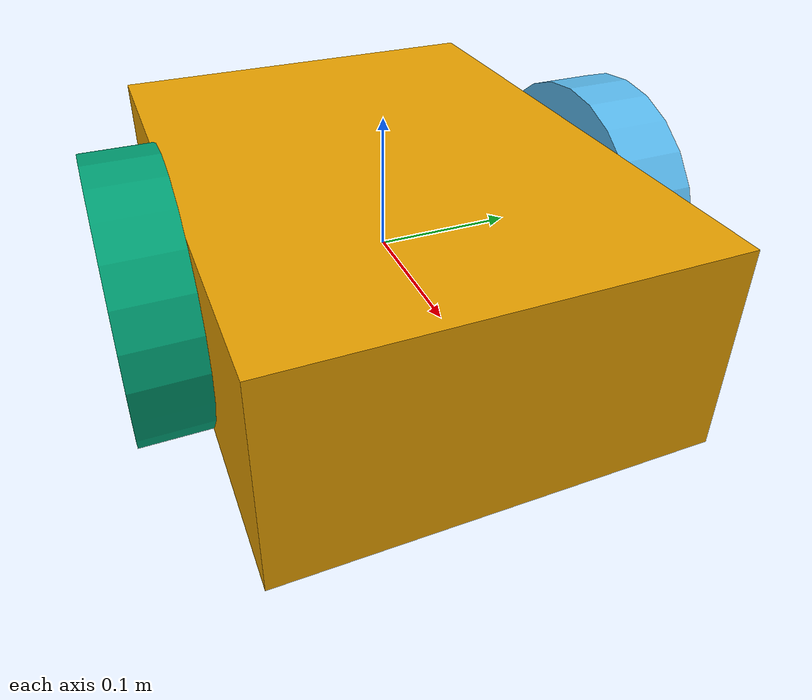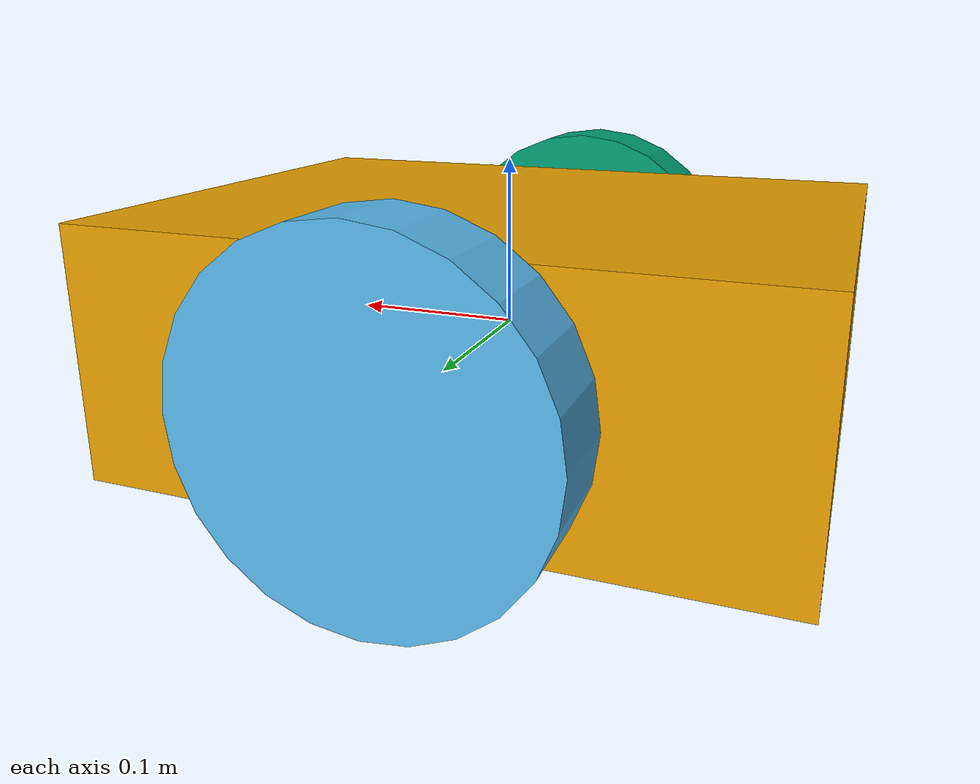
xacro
<?xml version="1.0"?>
<robot name="diff_robot" xmlns:xacro="http://ros.org/wiki/xacro">
  <xacro:arg name="namespace" default="robot"/>
  <xacro:property name="ns" value="$(arg namespace)"/>

  <xacro:property name="wheel_radius" value="0.1"/>
  <xacro:property name="wheel_sep" value="0.35"/>

  <link name="base_link">
    <visual><geometry><box size="0.4 0.3 0.15"/></geometry></visual>
    <collision><geometry><box size="0.4 0.3 0.15"/></geometry></collision>
    <inertial>
      <mass value="5.0"/>
      <inertia ixx="0.1" ixy="0" ixz="0" iyy="0.1" iyz="0" izz="0.1"/>
    </inertial>
  </link>

  <xacro:macro name="wheel" params="prefix y_reflect">
    <link name="${prefix}_wheel">
      <visual>
        <origin rpy="1.5708 0 0"/>
        <geometry><cylinder radius="${wheel_radius}" length="0.05"/></geometry>
      </visual>
      <collision>
        <origin rpy="1.5708 0 0"/>
        <geometry><cylinder radius="${wheel_radius}" length="0.05"/></geometry>
      </collision>
      <inertial>
        <mass value="0.5"/>
        <inertia ixx="0.001" ixy="0" ixz="0" iyy="0.001" iyz="0" izz="0.001"/>
      </inertial>
    </link>
    <joint name="${prefix}_wheel_joint" type="continuous">
      <parent link="base_link"/>
      <child link="${prefix}_wheel"/>
      <origin xyz="0 ${y_reflect * wheel_sep/2} 0"/>
      <axis xyz="0 1 0"/>
    </joint>
  </xacro:macro>
  <xacro:wheel prefix="left"  y_reflect="1"/>
  <xacro:wheel prefix="right" y_reflect="-1"/>

  <link name="caster">
    <visual><geometry><sphere radius="0.05"/></geometry></visual>
    <collision><geometry><sphere radius="0.05"/></geometry></collision>
    <inertial>
      <mass value="0.2"/>
      <inertia ixx="0.0001" ixy="0" ixz="0" iyy="0.0001" iyz="0" izz="0.0001"/>
    </inertial>
  </link>
  <joint name="caster_joint" type="fixed">
    <parent link="base_link"/>
    <child link="caster"/>
    <origin xyz="0.15 0 -0.05"/>
  </joint>
  <!-- Frictionless caster so it slides instead of resisting turns -->
  <gazebo reference="caster"><mu1>0.0</mu1><mu2>0.0</mu2></gazebo>

  <!-- Diff-drive system plugin (Gazebo Fortress / ignition-gazebo6) -->
  <gazebo>
    <plugin filename="ignition-gazebo-diff-drive-system"
            name="ignition::gazebo::systems::DiffDrive">
      <left_joint>left_wheel_joint</left_joint>
      <right_joint>right_wheel_joint</right_joint>
      <wheel_separation>${wheel_sep}</wheel_separation>
      <wheel_radius>${wheel_radius}</wheel_radius>
      <topic>/${ns}/cmd_vel</topic>
      <odom_topic>/${ns}/odom</odom_topic>
      <tf_topic>/${ns}/tf</tf_topic>
      <frame_id>${ns}/odom</frame_id>
      <child_frame_id>${ns}/base_link</child_frame_id>
      <odom_publish_frequency>30</odom_publish_frequency>
    </plugin>
  </gazebo>
</robot>
